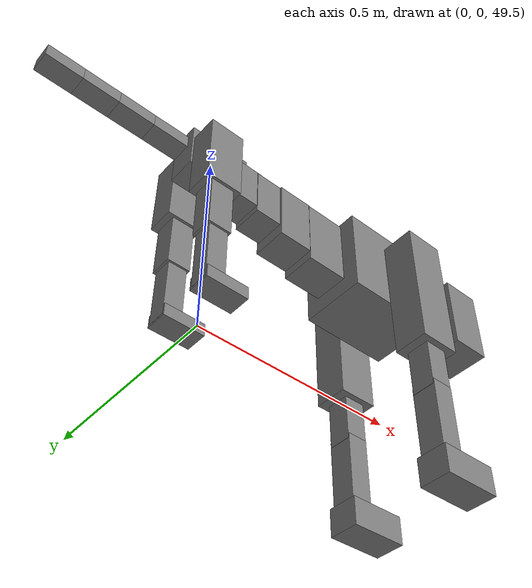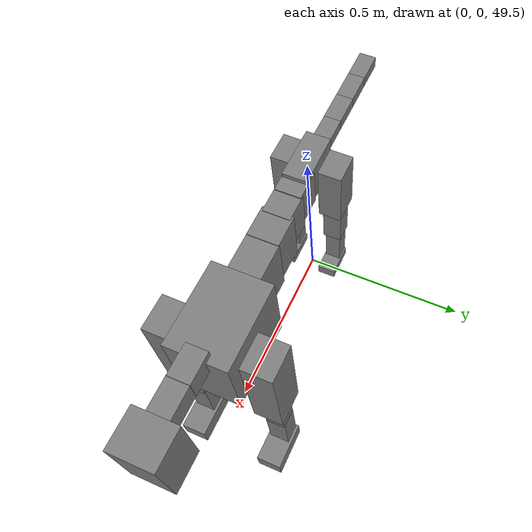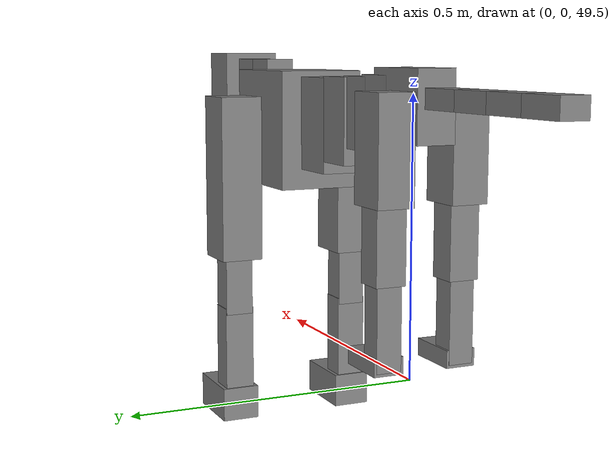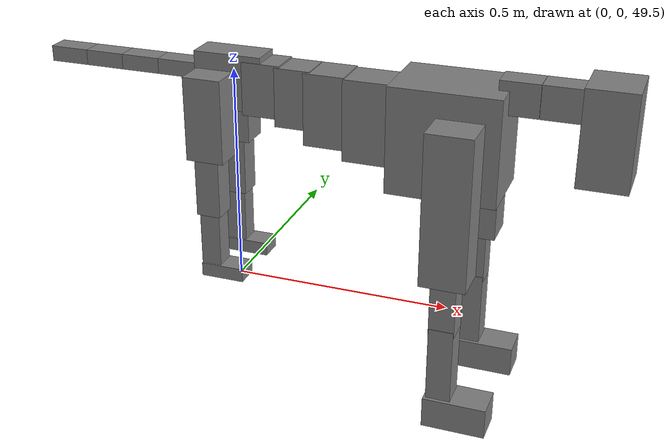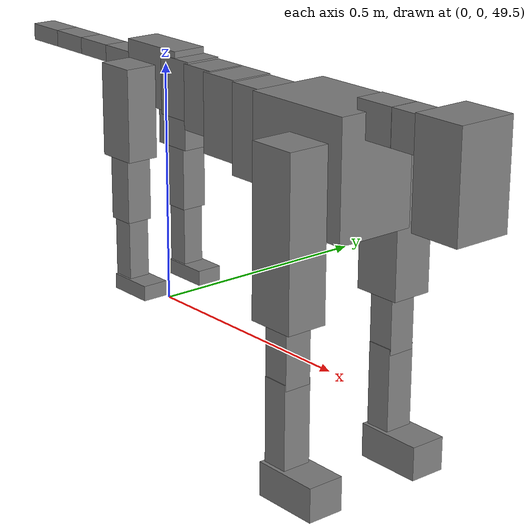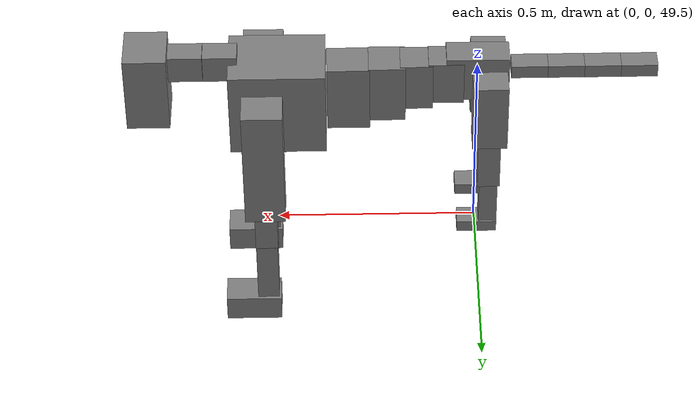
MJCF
<mujoco model="dog">

    <default>
        <joint armature="0.02" stiffness="1" damping="0.2" limited="true"/>
        <geom condim="3" friction="1 0.05 0.05" margin="0.01"/>
        <motor ctrllimited="true" ctrlrange="-1.0 1.0" forcelimited="true" gear="50"/>
    </default>

    <compiler inertiafromgeom="true" angle="radian"/>

    <option timestep="0.016" iterations="50" tolerance="1e-10" solver="Newton" jacobian="dense" cone="pyramidal"/>

    <size nconmax="20000" njmax="60000" nstack="5000000"/>
    <visual>
        <map force="0.1" zfar="30"/>
        <rgba haze="0.15 0.25 0.35 1"/>
        <quality shadowsize="2048"/>
        <global offwidth="800" offheight="800"/>
    </visual>

    <asset>
        <texture type="skybox" builtin="gradient" rgb1="0.3 0.5 0.7" rgb2="0 0 0" width="512" height="512"/>
        <texture name="texplane" type="2d" builtin="checker" rgb1=".2 .3 .4" rgb2=".1 0.15 0.2" width="512" height="512"
                 mark="cross" markrgb=".8 .8 .8"/>
        <texture name="texgeom" type="cube" builtin="flat" mark="cross" width="127" height="1278" rgb1="0.8 0.6 0.4"
                 rgb2="0.8 0.6 0.4" markrgb="1 1 1" random="0.01"/>

        <material name="matplane" reflectance="0.3" texture="texplane" texrepeat="1 1" texuniform="true"/>
        <material name="matgeom" texture="texgeom" texuniform="true" rgba="0.8 0.6 .4 1"/>
    </asset>

    <worldbody>
        <geom name="floor" pos="0 0 0" size="0 0 .25" type="plane" material="matplane" condim="3"/>

        <light directional="false" diffuse=".2 .2 .2" specular="0 0 0" pos="0 0 5" dir="0 0 -1" castshadow="false"/>
        <light mode="targetbodycom" target="torso" directional="false" diffuse=".8 .8 .8" specular="0.3 0.3 0.3"
               pos="0 0 4.0" dir="0 0 -1"/>

        <body name="root" pos="0 0 50">
            <freejoint name="root_1"/>
            <geom type="box" pos="0 0 -0.02" size="0.0774  0.0358  0.063" density="2030"/>

            <body name="spine1" pos="0.054 0 0">
                <joint name="spine1_y" axis="0 1 0" range="0 0.7" limited="true"/>
                <geom type="box" pos="0.02375 0 -0.03" size="0.04375  0.0375  0.05985" density="2030"/>

                <body name="spine2" pos="0.0612 0 0">
                    <joint name="spine2_y" axis="0 1 0" range="-0.15 0.15" limited="true"/>
                    <geom type="box" pos="0.03555  0  -0.04" size="0.04055  0.039  0.06615" density="2030"/>

                    <body name="spine3" pos="0.0730 0 0">
                        <joint name="spine3_y" axis="0 1 0" range="-0.15 0.15" limited="true"/>
                        <geom type="box" pos="0.03555  0  -0.057" size="0.04555  0.0445  0.081" density="2030"/>

                        <body name="spine4" pos="0.0780 0 0">
                            <joint name="spine4_y" axis="0 1 0" range="-0.15 0.15" limited="true"/>
                            <geom type="box" pos="0.05265  0  -0.07" size="0.05265  0.045  0.09135" density="2030"/>

                            <body name="torso" pos="0.1082 0 0">
                                <joint name="torso_y" axis="0 1 0" range="-0.15 0.15" limited="true"/>
                                <geom type="box" pos="0.11925  0  -0.085" size="0.11925  0.085  0.11745"
                                      density="2030"/>

                                <body name="neck1" pos="0.2160  0   0.0180">
                                    <joint name="neck1_y" axis="0 1 0" range="-1.2  -1" limited="true"/>
                                    <geom type="box" pos="0.0423  0  0" size="0.0423  0.03  0.036" density="2325"/>

                                    <body name="neck2" pos="0.0853  0  0">
                                        <joint name="neck2_y" axis="0 1 0" range="0.1  0" limited="true"/>
                                        <geom type="box" pos="0.0423  0  0" size="0.0423  0.03  0.036" density="2325"/>

                                        <body name="head" pos="0.0853  0  0">
                                            <joint name="head_y" axis="0 1 0" range="-0.3  -0.2" limited="true"/>
                                            <geom type="box" pos="0.0531  0  -0.055" size="0.0531  0.06  0.1044"
                                                  density="4030"/>

                                        </body>
                                    </body>
                                </body>

                                <body name="front_shoulder" pos="0.156  0   -0.0480">
                                    <joint name="front_shoulder_y" axis="0 1 0" range="-1 1.5" limited="true"/>
                                    <geom type="box" pos="0 0.13 -0.1418" size="0.0504  0.0431  0.1685" density="1158"/>
                                    <geom type="box" pos="0 -0.13 -0.1418" size="0.0504  0.0431  0.1685"
                                          density="1158"/>

                                    <body name="front_elbow" pos="0  0  -0.2837">
                                        <joint name="front_elbow_y" axis="0 1 0" range="-2 0" limited="true"/>
                                        <geom type="box" pos="0 0.13 -0.0723" size="0.0281  0.0287  0.0723"
                                              density="1081"/>
                                        <geom type="box" pos="0 -0.13 -0.0723" size="0.0281  0.0287  0.0723"
                                              density="1081"/>

                                        <body name="front_wrist" pos="0  0  -0.1447">
                                            <joint name="front_wrist_y" axis="0 1 0" range="-0.2 0" limited="true"/>
                                            <geom type="box" pos="0 0.13 -0.0867" size="0.0272  0.0302  0.0998"
                                                  density="1664"/>
                                            <geom type="box" pos="0 -0.13 -0.0867" size="0.0272  0.0302  0.0998"
                                                  density="1664"/>

                                            <body name="front_finger_end" pos="0  0  -0.1734">
                                                <joint name="front_finger_y" axis="0 1 0" range="-0.4 1"
                                                       limited="true"/>
                                                <geom type="box" pos="0.0383  0.13  -0.0197"
                                                      size="0.0701  0.0383  0.0347" density="1515"/>
                                                <geom type="box" pos="0.0383  -0.13  -0.0197"
                                                      size="0.0701  0.0383  0.0347" density="1515"/>

                                            </body>

                                        </body>
                                    </body>
                                </body>

                            </body>
                        </body>
                    </body>
                </body>
            </body>

            <body name="back_hip" pos="-0.03 0 -0.018">
                <joint name="back_hip_y" axis="0 1 0" range="-1.5 0.3" limited="true"/>
                <geom type="box" pos="0 0.07 -0.0723" size="0.0432  0.0339  0.0951" density="1154"/>
                <geom type="box" pos="0 -0.07 -0.0723" size="0.0432  0.0339  0.0951" density="1154"/>

                <body name="back_knee" pos="0  0  -0.1445">
                    <joint name="back_knee_y" axis="0 1 0" range="0 2.8" limited="true"/>
                    <geom type="box" pos="0 0.07 -0.0698" size="0.0279  0.0275  0.0854" density="1227"/>
                    <geom type="box" pos="0 -0.07 -0.0698" size="0.0279  0.0275  0.0854" density="1227"/>

                    <body name="back_ankle" pos="0  0  -0.1396">
                        <joint name="back_ankle_y" axis="0 1 0" range="-2.2 0" limited="true"/>
                        <geom type="box" pos="0 0.07 -0.0761" size="0.0230  0.0230  0.0874" density="1284"/>
                        <geom type="box" pos="0 -0.07 -0.0761" size="0.0230  0.0230  0.0874" density="1284"/>

                        <body name="back_toe_end" pos="0  0  -0.1522">
                            <joint name="back_toe_y" axis="0 1 0" range="-0.4 1" limited="true"/>
                            <geom type="box" pos="0.0273  0.07  -0.0007" size="0.0500  0.0273  0.0157" density="1515"/>
                            <geom type="box" pos="0.0273  -0.07  -0.0007" size="0.0500  0.0273  0.0157" density="1515"/>

                        </body>
                    </body>
                </body>
            </body>

            <body name="tail1" pos="-0.074 0 -0.006">
                <joint name="tail1_y" axis="0 1 0" range="-0.2 0.2" limited="true"/>
                <geom type="box" pos="-0.0536  0  0" size="0.045  0.025  0.0175" density="1587"/>

                <body name="tail2" pos="-0.09 0 0">
                    <joint name="tail2_y" axis="0 1 0" range="-0.2 0.2" limited="true"/>
                    <geom type="box" pos="-0.0536  0  0" size="0.045  0.025  0.0175" density="1587"/>

                    <body name="tail3" pos="-0.09 0 0">
                        <joint name="tail3_y" axis="0 1 0" range="-0.2 0.2" limited="true"/>
                        <geom type="box" pos="-0.0536  0  0" size="0.045  0.025  0.0175" density="1587"/>

                        <body name="tail4" pos="-0.09 0 0">
                            <joint name="tail4_y" axis="0 1 0" range="-0.2 0.2" limited="true"/>
                            <geom type="box" pos="-0.0536  0  0" size="0.045  0.025  0.0175" density="1587"/>

                        </body>
                    </body>
                </body>
            </body>
        </body>
    </worldbody>

    <actuator>
        <motor joint="spine1_y" forcerange="-150 150     "/>
        <motor joint="spine2_y" forcerange="-150 150     "/>
        <motor joint="spine3_y" forcerange="-150 150     "/>
        <motor joint="spine4_y" forcerange="-150 150     "/>
        <motor joint="torso_y" forcerange="-150 150     "/>
        <motor joint="neck1_y" forcerange="-100 100       "/>
        <motor joint="neck2_y" forcerange="-100 100       "/>
        <motor joint="head_y" forcerange="-150 150       "/>
        <motor joint="front_shoulder_y" forcerange="-199.87 187.54"/>
        <motor joint="front_elbow_y" forcerange="-139.58 169.26"/>
        <motor joint="front_wrist_y" forcerange="-110.91 130.90"/>
        <motor joint="front_finger_y" forcerange="-90.34 73.71"/>
        <motor joint="back_hip_y" forcerange="-318.36 333.25"/>
        <motor joint="back_knee_y" forcerange="-288.18 311.73"/>
        <motor joint="back_angle_y" forcerange="-164.52 103.31"/>
        <motor joint="back_toe_y" forcerange="-60.07 78.24"/>
        <motor joint="tail1_y" forcerange="-50 50     "/>
        <motor joint="tail2_y" forcerange="-50 50     "/>
        <motor joint="tail3_y" forcerange="-50 50     "/>
        <motor joint="tail4_y" forcerange="-50 50     "/>
    </actuator>
</mujoco>
